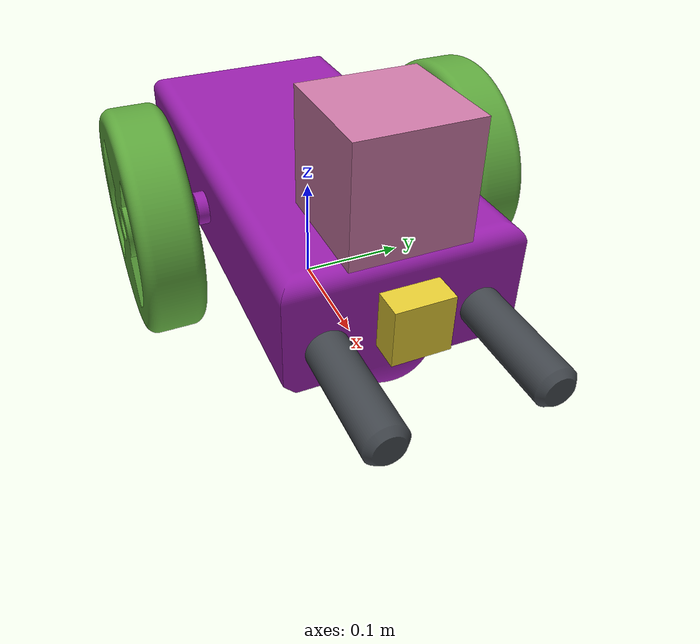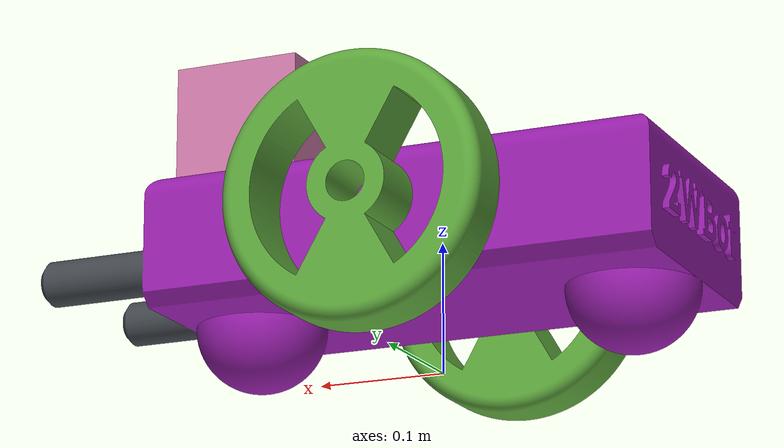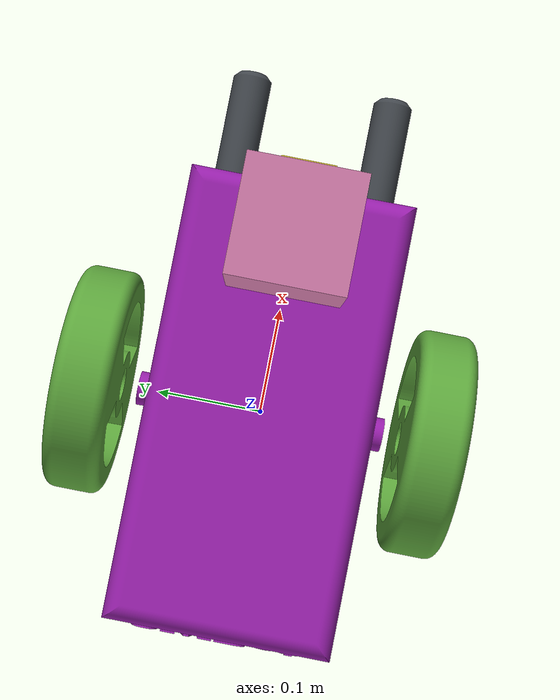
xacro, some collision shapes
<?xml version='1.0'?>

<robot name="my_robot" xmlns:xacro="http://www.ros.org/wiki/xacro">

  <!-- Imports -->

  <xacro:include filename="$(find my_robot)/urdf/my_robot.gazebo" />

  <!-- Links -->

  <!-- Base Imaginary Link -->
  <link name="robot_footprint"></link>
  <!-- Base Imaginary Fixed Joint -->
  <joint name="robot_footprint_joint" type="fixed">
    <origin xyz="0 0 0.1" rpy="0 0 0" />
    <parent link="robot_footprint"/>
    <child link="chassis" />
  </joint>

  <!-- Chassis Link -->
  <link name='chassis'>
    <pose>0 0 0.1 0 0 0</pose>

    <inertial>
      <mass value="15.0"/>
      <origin xyz="0.0 0 0" rpy=" 0 0 0"/>
      <inertia
          ixx="0.1" ixy="0" ixz="0"
          iyy="0.1" iyz="0"
          izz="0.1"
      />
    </inertial>

   <visual name='chassis_visual'>
      <origin xyz="0 0 0" rpy=" 0 0 0"/>
      <geometry>
        <mesh filename = "package://my_robot/meshes/2WBot_chassis.dae"/>
      </geometry>
   </visual>

    <collision name='collision'>
      <origin xyz="0 0 0" rpy=" 0 0 0"/>
      <geometry>
        <box size=".4 .2 .1"/>
      </geometry>
    </collision>

    <collision name='back_caster_collision'>
      <origin xyz="-0.15 0 -0.05" rpy=" 0 0 0"/>
      <geometry>
        <sphere radius="0.0499"/>
      </geometry>
    </collision>

    <collision name='front_caster_collision'>
      <origin xyz="0.15 0 -0.05" rpy=" 0 0 0"/>
      <geometry>
        <sphere radius="0.0499"/>
      </geometry>
    </collision>

    <collision name='grip_collision'>
      <origin xyz="0.25 0 -0.015" rpy=" 0 0 0"/>
      <geometry>
        <box size="0.1 0.17 0.03"/>
      </geometry>
    </collision>

  </link>

  <!-- Wheels -->

  <!-- Left Wheel -->
  <link name='left_wheel'>
    <inertial>
      <mass value="5.0"/>
      <origin xyz="0.0 0 0" rpy="0 1.5707 1.5707"/>
      <inertia
          ixx="0.1" ixy="0" ixz="0"
          iyy="0.1" iyz="0"
          izz="0.1"
      />
    </inertial>

    <collision name='left_wheel_collision'>
      <origin xyz="0 0 0" rpy="0 1.5707 1.5707"/>
      <geometry>
        <cylinder radius="0.1" length="0.05"/>
      </geometry>
    </collision>

    <visual name='left_wheel_visual'>
      <origin xyz="0 0.025 0" rpy="0 0 0"/>
      <geometry>
        <mesh filename = "package://my_robot/meshes/2WBot_wheel.dae"/>
      </geometry>
    </visual>
  </link>

  <!-- Right Wheel -->
  <link name='right_wheel'>
    <inertial>
      <mass value="5.0"/>
      <origin xyz="0.0 0 0" rpy="0 1.5707 1.5707"/>
      <inertia
          ixx="0.1" ixy="0" ixz="0"
          iyy="0.1" iyz="0"
          izz="0.1"
      />
    </inertial>

    <collision name='right_wheel_collision'>
      <origin xyz="0 0 0" rpy="0 1.5707 1.5707"/>
      <geometry>
        <cylinder radius="0.1" length="0.05"/>
      </geometry>
    </collision>

    <visual name='right_wheel_visual'>
      <origin xyz="0 0.025 0" rpy="0 0 0"/>
      <geometry>
        <mesh filename = "package://my_robot/meshes/2WBot_wheel.dae"/>
      </geometry>
    </visual>
  </link>

  <!-- Sensors -->

  <!-- Camera Link -->
  <link name='camera'>
    <inertial>
      <mass value="0.1"/>
      <origin xyz="0.0 0 0" rpy="0 0 0"/>
      <inertia
          ixx="1e-6" ixy="0" ixz="0"
          iyy="1e-6" iyz="0"
          izz="1e-6"
      />
    </inertial>

    <collision name='camera_collision'>
      <origin xyz="0 0 0" rpy="0 0 0"/>
      <geometry>
        <box size="0.05 0.05 0.05"/>
      </geometry>
    </collision>

    <visual name='camera_visual'>
      <origin xyz="0 0 0" rpy="0 0 0"/>
      <geometry>
        <box size="0.05 0.05 0.05"/>
      </geometry>
    </visual>
  </link>

  <!-- RGB-D Camera Link -->
    <link name="camera_link_optical">
  </link>

  <!-- Hokuyo Lidar Link -->
  <link name='hokuyo'>
    <inertial>
      <mass value="1e-5"/>
      <origin xyz="0 0 0" rpy="0 0 0"/>
      <inertia
          ixx="1e-6" ixy="0" ixz="0"
          iyy="1e-6" iyz="0"
          izz="1e-6"
      />
    </inertial>

    <collision name='hokuyo_collision'>
      <origin xyz="0 0 0" rpy="0 0 0"/>
      <geometry>
        <box size="0.1 0.1 0.1"/>
      </geometry>
    </collision>

    <visual name='hokuyo_visual'>
      <origin xyz="0 0 0" rpy="0 0 0"/>
      <geometry>
        <mesh filename = "package://my_robot/meshes/hokuyo.dae"/>
      </geometry>
    </visual>
  </link>

  <!-- Joints -->

  <!-- Left Wheel Joint -->
  <joint type="continuous" name="left_wheel_hinge">
    <origin xyz="0 0.15 0" rpy="0 0 0"/>
    <child link="left_wheel"/>
    <parent link="chassis"/>
    <axis xyz="0 1 0" rpy="0 0 0"/>
    <limit effort="10000" velocity="1000"/>
    <dynamics damping="1.0" friction="1.0"/>
  </joint>

  <!-- Right Wheel Joint -->
  <joint type="continuous" name="right_wheel_hinge">
    <origin xyz="0 -0.15 0" rpy="0 0 0"/>
    <child link="right_wheel"/>
    <parent link="chassis"/>
    <axis xyz="0 1 0" rpy="0 0 0"/>
    <limit effort="10000" velocity="1000"/>
    <dynamics damping="1.0" friction="1.0"/>
  </joint>

  <!-- Camera Joint -->
  <joint type="fixed" name="camera_joint">
    <origin xyz="0.2 0 0" rpy="0 0 0"/>
    <child link="camera"/>
    <parent link="chassis"/>
    <axis xyz="0 1 0" rpy="0 0 0"/>
  </joint>

  <!-- RGB-D Camera Joint -->
  <joint name="camera_optical_joint" type="fixed">
    <origin xyz="0 0 0" rpy="-1.5707 0 -1.5707"/>
    <parent link="camera"/>
    <child link="camera_link_optical"/>
  </joint>

  <!-- Hokuyo Lidar Joint -->
  <joint type="fixed" name="hokuyo_joint">
    <origin xyz="0.15 0 0.1" rpy="0 0 0"/>
    <child link="hokuyo"/>
    <parent link="chassis"/>
    <axis xyz="0 1 0" rpy="0 0 0"/>
  </joint>

  <!-- Materials -->

  <gazebo reference="camera">
    <material>Gazebo/ZincYellow</material>
  </gazebo>

</robot>
